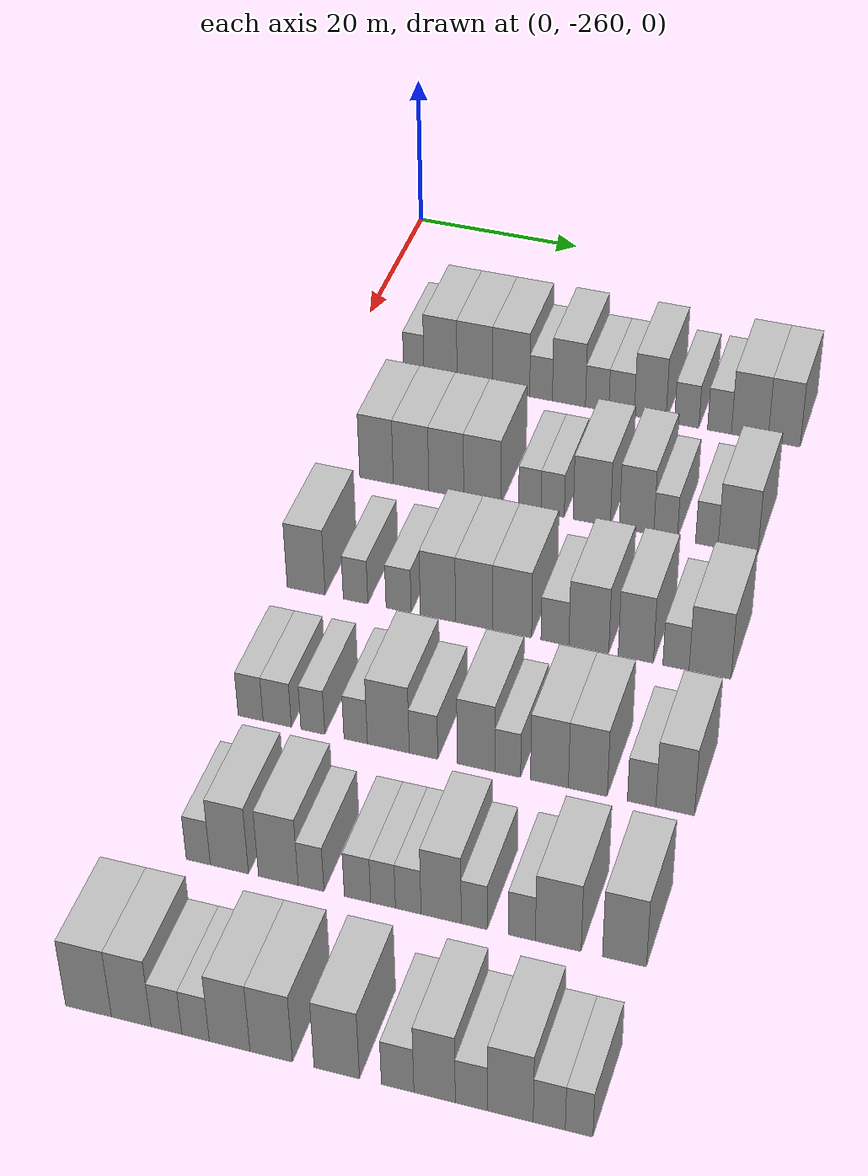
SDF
<sdf version="1.6">
 <world name="default">
  <model name="building_22">
   <static>1</static>
   <pose>25.0000 -251.3303 0 0.000000 0.000000 0.000000</pose>
   <link name="link">
    <pose>0 0 3.00 0 0 0</pose>
    <collision name="collision"><geometry><box><size>10.0000 2.4771 6.0000</size></box></geometry></collision>
    <visual name="visual">
     <cast_shadows>0</cast_shadows>
     <geometry><box><size>10.0000 2.4771 6.0000</size></box></geometry>
     <material>
      <script>
       <uri>model://HANNAS_wall/materials/scripts</uri>
       <uri>model://HANNAS_wall/materials/textures</uri>
       <name>vrc/HANNAS_wall</name>
      </script>
     </material>
    </visual>
   </link>
  </model>
  <model name="building_23">
   <static>1</static>
   <pose>25.0000 -248.0979 0 0.000000 0.000000 0.000000</pose>
   <link name="link">
    <pose>0 0 4.50 0 0 0</pose>
    <collision name="collision"><geometry><box><size>10.0000 3.9877 9.0000</size></box></geometry></collision>
    <visual name="visual">
     <cast_shadows>0</cast_shadows>
     <geometry><box><size>10.0000 3.9877 9.0000</size></box></geometry>
     <material>
      <script>
       <uri>model://HANNAS_wall/materials/scripts</uri>
       <uri>model://HANNAS_wall/materials/textures</uri>
       <name>vrc/HANNAS_wall</name>
      </script>
     </material>
    </visual>
   </link>
  </model>
  <model name="building_24">
   <static>1</static>
   <pose>25.0000 -243.9696 0 0.000000 0.000000 0.000000</pose>
   <link name="link">
    <pose>0 0 4.50 0 0 0</pose>
    <collision name="collision"><geometry><box><size>10.0000 4.2689 9.0000</size></box></geometry></collision>
    <visual name="visual">
     <cast_shadows>0</cast_shadows>
     <geometry><box><size>10.0000 4.2689 9.0000</size></box></geometry>
     <material>
      <script>
       <uri>model://HANNAS_wall/materials/scripts</uri>
       <uri>model://HANNAS_wall/materials/textures</uri>
       <name>vrc/HANNAS_wall</name>
      </script>
     </material>
    </visual>
   </link>
  </model>
  <model name="building_25">
   <static>1</static>
   <pose>25.0000 -239.6235 0 0.000000 0.000000 0.000000</pose>
   <link name="link">
    <pose>0 0 4.50 0 0 0</pose>
    <collision name="collision"><geometry><box><size>10.0000 4.4232 9.0000</size></box></geometry></collision>
    <visual name="visual">
     <cast_shadows>0</cast_shadows>
     <geometry><box><size>10.0000 4.4232 9.0000</size></box></geometry>
     <material>
      <script>
       <uri>model://HANNAS_wall/materials/scripts</uri>
       <uri>model://HANNAS_wall/materials/textures</uri>
       <name>vrc/HANNAS_wall</name>
      </script>
     </material>
    </visual>
   </link>
  </model>
  <model name="building_26">
   <static>1</static>
   <pose>25.0000 -236.0674 0 0.000000 0.000000 0.000000</pose>
   <link name="link">
    <pose>0 0 3.00 0 0 0</pose>
    <collision name="collision"><geometry><box><size>10.0000 2.6891 6.0000</size></box></geometry></collision>
    <visual name="visual">
     <cast_shadows>0</cast_shadows>
     <geometry><box><size>10.0000 2.6891 6.0000</size></box></geometry>
     <material>
      <script>
       <uri>model://HANNAS_wall/materials/scripts</uri>
       <uri>model://HANNAS_wall/materials/textures</uri>
       <name>vrc/HANNAS_wall</name>
      </script>
     </material>
    </visual>
   </link>
  </model>
  <model name="building_27">
   <static>1</static>
   <pose>25.0000 -232.7667 0 0.000000 0.000000 0.000000</pose>
   <link name="link">
    <pose>0 0 4.50 0 0 0</pose>
    <collision name="collision"><geometry><box><size>10.0000 3.9124 9.0000</size></box></geometry></collision>
    <visual name="visual">
     <cast_shadows>0</cast_shadows>
     <geometry><box><size>10.0000 3.9124 9.0000</size></box></geometry>
     <material>
      <script>
       <uri>model://HANNAS_wall/materials/scripts</uri>
       <uri>model://HANNAS_wall/materials/textures</uri>
       <name>vrc/HANNAS_wall</name>
      </script>
     </material>
    </visual>
   </link>
  </model>
  <model name="building_28">
   <static>1</static>
   <pose>25.0000 -229.4399 0 0.000000 0.000000 0.000000</pose>
   <link name="link">
    <pose>0 0 3.00 0 0 0</pose>
    <collision name="collision"><geometry><box><size>10.0000 2.7411 6.0000</size></box></geometry></collision>
    <visual name="visual">
     <cast_shadows>0</cast_shadows>
     <geometry><box><size>10.0000 2.7411 6.0000</size></box></geometry>
     <material>
      <script>
       <uri>model://HANNAS_wall/materials/scripts</uri>
       <uri>model://HANNAS_wall/materials/textures</uri>
       <name>vrc/HANNAS_wall</name>
      </script>
     </material>
    </visual>
   </link>
  </model>
  <model name="building_29">
   <static>1</static>
   <pose>25.0000 -226.5776 0 0.000000 0.000000 0.000000</pose>
   <link name="link">
    <pose>0 0 3.00 0 0 0</pose>
    <collision name="collision"><geometry><box><size>10.0000 2.9833 6.0000</size></box></geometry></collision>
    <visual name="visual">
     <cast_shadows>0</cast_shadows>
     <geometry><box><size>10.0000 2.9833 6.0000</size></box></geometry>
     <material>
      <script>
       <uri>model://HANNAS_wall/materials/scripts</uri>
       <uri>model://HANNAS_wall/materials/textures</uri>
       <name>vrc/HANNAS_wall</name>
      </script>
     </material>
    </visual>
   </link>
  </model>
  <model name="building_30">
   <static>1</static>
   <pose>25.0000 -223.2471 0 0.000000 0.000000 0.000000</pose>
   <link name="link">
    <pose>0 0 4.50 0 0 0</pose>
    <collision name="collision"><geometry><box><size>10.0000 3.6777 9.0000</size></box></geometry></collision>
    <visual name="visual">
     <cast_shadows>0</cast_shadows>
     <geometry><box><size>10.0000 3.6777 9.0000</size></box></geometry>
     <material>
      <script>
       <uri>model://HANNAS_wall/materials/scripts</uri>
       <uri>model://HANNAS_wall/materials/textures</uri>
       <name>vrc/HANNAS_wall</name>
      </script>
     </material>
    </visual>
   </link>
  </model>
  <model name="building_31">
   <static>1</static>
   <pose>25.0000 -218.9944 0 0.000000 0.000000 0.000000</pose>
   <link name="link">
    <pose>0 0 3.00 0 0 0</pose>
    <collision name="collision"><geometry><box><size>10.0000 2.8277 6.0000</size></box></geometry></collision>
    <visual name="visual">
     <cast_shadows>0</cast_shadows>
     <geometry><box><size>10.0000 2.8277 6.0000</size></box></geometry>
     <material>
      <script>
       <uri>model://HANNAS_wall/materials/scripts</uri>
       <uri>model://HANNAS_wall/materials/textures</uri>
       <name>vrc/HANNAS_wall</name>
      </script>
     </material>
    </visual>
   </link>
  </model>
  <model name="building_32">
   <static>1</static>
   <pose>25.0000 -215.2157 0 0.000000 0.000000 0.000000</pose>
   <link name="link">
    <pose>0 0 3.00 0 0 0</pose>
    <collision name="collision"><geometry><box><size>10.0000 2.7296 6.0000</size></box></geometry></collision>
    <visual name="visual">
     <cast_shadows>0</cast_shadows>
     <geometry><box><size>10.0000 2.7296 6.0000</size></box></geometry>
     <material>
      <script>
       <uri>model://HANNAS_wall/materials/scripts</uri>
       <uri>model://HANNAS_wall/materials/textures</uri>
       <name>vrc/HANNAS_wall</name>
      </script>
     </material>
    </visual>
   </link>
  </model>
  <model name="building_33">
   <static>1</static>
   <pose>25.0000 -211.7480 0 0.000000 0.000000 0.000000</pose>
   <link name="link">
    <pose>0 0 4.50 0 0 0</pose>
    <collision name="collision"><geometry><box><size>10.0000 4.2057 9.0000</size></box></geometry></collision>
    <visual name="visual">
     <cast_shadows>0</cast_shadows>
     <geometry><box><size>10.0000 4.2057 9.0000</size></box></geometry>
     <material>
      <script>
       <uri>model://HANNAS_wall/materials/scripts</uri>
       <uri>model://HANNAS_wall/materials/textures</uri>
       <name>vrc/HANNAS_wall</name>
      </script>
     </material>
    </visual>
   </link>
  </model>
  <model name="building_34">
   <static>1</static>
   <pose>25.0000 -207.8131 0 0.000000 0.000000 0.000000</pose>
   <link name="link">
    <pose>0 0 4.50 0 0 0</pose>
    <collision name="collision"><geometry><box><size>10.0000 3.6641 9.0000</size></box></geometry></collision>
    <visual name="visual">
     <cast_shadows>0</cast_shadows>
     <geometry><box><size>10.0000 3.6641 9.0000</size></box></geometry>
     <material>
      <script>
       <uri>model://HANNAS_wall/materials/scripts</uri>
       <uri>model://HANNAS_wall/materials/textures</uri>
       <name>vrc/HANNAS_wall</name>
      </script>
     </material>
    </visual>
   </link>
  </model>
  <model name="building_195">
   <static>1</static>
   <pose>44.0000 -249.5070 0 0.000000 0.000000 0.000000</pose>
   <link name="link">
    <pose>0 0 4.50 0 0 0</pose>
    <collision name="collision"><geometry><box><size>10.0000 3.8916 9.0000</size></box></geometry></collision>
    <visual name="visual">
     <cast_shadows>0</cast_shadows>
     <geometry><box><size>10.0000 3.8916 9.0000</size></box></geometry>
     <material>
      <script>
       <uri>model://HANNAS_wall/materials/scripts</uri>
       <uri>model://HANNAS_wall/materials/textures</uri>
       <name>vrc/HANNAS_wall</name>
      </script>
     </material>
    </visual>
   </link>
  </model>
  <model name="building_196">
   <static>1</static>
   <pose>44.0000 -245.5152 0 0.000000 0.000000 0.000000</pose>
   <link name="link">
    <pose>0 0 4.50 0 0 0</pose>
    <collision name="collision"><geometry><box><size>10.0000 4.0922 9.0000</size></box></geometry></collision>
    <visual name="visual">
     <cast_shadows>0</cast_shadows>
     <geometry><box><size>10.0000 4.0922 9.0000</size></box></geometry>
     <material>
      <script>
       <uri>model://HANNAS_wall/materials/scripts</uri>
       <uri>model://HANNAS_wall/materials/textures</uri>
       <name>vrc/HANNAS_wall</name>
      </script>
     </material>
    </visual>
   </link>
  </model>
  <model name="building_197">
   <static>1</static>
   <pose>44.0000 -241.4738 0 0.000000 0.000000 0.000000</pose>
   <link name="link">
    <pose>0 0 4.50 0 0 0</pose>
    <collision name="collision"><geometry><box><size>10.0000 3.9905 9.0000</size></box></geometry></collision>
    <visual name="visual">
     <cast_shadows>0</cast_shadows>
     <geometry><box><size>10.0000 3.9905 9.0000</size></box></geometry>
     <material>
      <script>
       <uri>model://HANNAS_wall/materials/scripts</uri>
       <uri>model://HANNAS_wall/materials/textures</uri>
       <name>vrc/HANNAS_wall</name>
      </script>
     </material>
    </visual>
   </link>
  </model>
  <model name="building_198">
   <static>1</static>
   <pose>44.0000 -237.3508 0 0.000000 0.000000 0.000000</pose>
   <link name="link">
    <pose>0 0 4.50 0 0 0</pose>
    <collision name="collision"><geometry><box><size>10.0000 4.2556 9.0000</size></box></geometry></collision>
    <visual name="visual">
     <cast_shadows>0</cast_shadows>
     <geometry><box><size>10.0000 4.2556 9.0000</size></box></geometry>
     <material>
      <script>
       <uri>model://HANNAS_wall/materials/scripts</uri>
       <uri>model://HANNAS_wall/materials/textures</uri>
       <name>vrc/HANNAS_wall</name>
      </script>
     </material>
    </visual>
   </link>
  </model>
  <model name="building_199">
   <static>1</static>
   <pose>44.0000 -231.9634 0 0.000000 0.000000 0.000000</pose>
   <link name="link">
    <pose>0 0 3.00 0 0 0</pose>
    <collision name="collision"><geometry><box><size>10.0000 2.5194 6.0000</size></box></geometry></collision>
    <visual name="visual">
     <cast_shadows>0</cast_shadows>
     <geometry><box><size>10.0000 2.5194 6.0000</size></box></geometry>
     <material>
      <script>
       <uri>model://HANNAS_wall/materials/scripts</uri>
       <uri>model://HANNAS_wall/materials/textures</uri>
       <name>vrc/HANNAS_wall</name>
      </script>
     </material>
    </visual>
   </link>
  </model>
  <model name="building_200">
   <static>1</static>
   <pose>44.0000 -229.4005 0 0.000000 0.000000 0.000000</pose>
   <link name="link">
    <pose>0 0 3.00 0 0 0</pose>
    <collision name="collision"><geometry><box><size>10.0000 2.6064 6.0000</size></box></geometry></collision>
    <visual name="visual">
     <cast_shadows>0</cast_shadows>
     <geometry><box><size>10.0000 2.6064 6.0000</size></box></geometry>
     <material>
      <script>
       <uri>model://HANNAS_wall/materials/scripts</uri>
       <uri>model://HANNAS_wall/materials/textures</uri>
       <name>vrc/HANNAS_wall</name>
      </script>
     </material>
    </visual>
   </link>
  </model>
  <model name="building_201">
   <static>1</static>
   <pose>44.0000 -225.0268 0 0.000000 0.000000 0.000000</pose>
   <link name="link">
    <pose>0 0 4.50 0 0 0</pose>
    <collision name="collision"><geometry><box><size>10.0000 4.1409 9.0000</size></box></geometry></collision>
    <visual name="visual">
     <cast_shadows>0</cast_shadows>
     <geometry><box><size>10.0000 4.1409 9.0000</size></box></geometry>
     <material>
      <script>
       <uri>model://HANNAS_wall/materials/scripts</uri>
       <uri>model://HANNAS_wall/materials/textures</uri>
       <name>vrc/HANNAS_wall</name>
      </script>
     </material>
    </visual>
   </link>
  </model>
  <model name="building_202">
   <static>1</static>
   <pose>44.0000 -220.0450 0 0.000000 0.000000 0.000000</pose>
   <link name="link">
    <pose>0 0 4.50 0 0 0</pose>
    <collision name="collision"><geometry><box><size>10.0000 3.8227 9.0000</size></box></geometry></collision>
    <visual name="visual">
     <cast_shadows>0</cast_shadows>
     <geometry><box><size>10.0000 3.8227 9.0000</size></box></geometry>
     <material>
      <script>
       <uri>model://HANNAS_wall/materials/scripts</uri>
       <uri>model://HANNAS_wall/materials/textures</uri>
       <name>vrc/HANNAS_wall</name>
      </script>
     </material>
    </visual>
   </link>
  </model>
  <model name="building_203">
   <static>1</static>
   <pose>44.0000 -216.8340 0 0.000000 0.000000 0.000000</pose>
   <link name="link">
    <pose>0 0 3.00 0 0 0</pose>
    <collision name="collision"><geometry><box><size>10.0000 2.5993 6.0000</size></box></geometry></collision>
    <visual name="visual">
     <cast_shadows>0</cast_shadows>
     <geometry><box><size>10.0000 2.5993 6.0000</size></box></geometry>
     <material>
      <script>
       <uri>model://HANNAS_wall/materials/scripts</uri>
       <uri>model://HANNAS_wall/materials/textures</uri>
       <name>vrc/HANNAS_wall</name>
      </script>
     </material>
    </visual>
   </link>
  </model>
  <model name="building_204">
   <static>1</static>
   <pose>44.0000 -212.3024 0 0.000000 0.000000 0.000000</pose>
   <link name="link">
    <pose>0 0 3.00 0 0 0</pose>
    <collision name="collision"><geometry><box><size>10.0000 2.4640 6.0000</size></box></geometry></collision>
    <visual name="visual">
     <cast_shadows>0</cast_shadows>
     <geometry><box><size>10.0000 2.4640 6.0000</size></box></geometry>
     <material>
      <script>
       <uri>model://HANNAS_wall/materials/scripts</uri>
       <uri>model://HANNAS_wall/materials/textures</uri>
       <name>vrc/HANNAS_wall</name>
      </script>
     </material>
    </visual>
   </link>
  </model>
  <model name="building_205">
   <static>1</static>
   <pose>44.0000 -208.9089 0 0.000000 0.000000 0.000000</pose>
   <link name="link">
    <pose>0 0 4.50 0 0 0</pose>
    <collision name="collision"><geometry><box><size>10.0000 4.3229 9.0000</size></box></geometry></collision>
    <visual name="visual">
     <cast_shadows>0</cast_shadows>
     <geometry><box><size>10.0000 4.3229 9.0000</size></box></geometry>
     <material>
      <script>
       <uri>model://HANNAS_wall/materials/scripts</uri>
       <uri>model://HANNAS_wall/materials/textures</uri>
       <name>vrc/HANNAS_wall</name>
      </script>
     </material>
    </visual>
   </link>
  </model>
  <model name="building_371">
   <static>1</static>
   <pose>63.0000 -250.9169 0 0.000000 0.000000 0.000000</pose>
   <link name="link">
    <pose>0 0 4.50 0 0 0</pose>
    <collision name="collision"><geometry><box><size>10.0000 4.2186 9.0000</size></box></geometry></collision>
    <visual name="visual">
     <cast_shadows>0</cast_shadows>
     <geometry><box><size>10.0000 4.2186 9.0000</size></box></geometry>
     <material>
      <script>
       <uri>model://HANNAS_wall/materials/scripts</uri>
       <uri>model://HANNAS_wall/materials/textures</uri>
       <name>vrc/HANNAS_wall</name>
      </script>
     </material>
    </visual>
   </link>
  </model>
  <model name="building_372">
   <static>1</static>
   <pose>63.0000 -245.4545 0 0.000000 0.000000 0.000000</pose>
   <link name="link">
    <pose>0 0 3.00 0 0 0</pose>
    <collision name="collision"><geometry><box><size>10.0000 2.7062 6.0000</size></box></geometry></collision>
    <visual name="visual">
     <cast_shadows>0</cast_shadows>
     <geometry><box><size>10.0000 2.7062 6.0000</size></box></geometry>
     <material>
      <script>
       <uri>model://HANNAS_wall/materials/scripts</uri>
       <uri>model://HANNAS_wall/materials/textures</uri>
       <name>vrc/HANNAS_wall</name>
      </script>
     </material>
    </visual>
   </link>
  </model>
  <model name="building_373">
   <static>1</static>
   <pose>63.0000 -240.7248 0 0.000000 0.000000 0.000000</pose>
   <link name="link">
    <pose>0 0 3.00 0 0 0</pose>
    <collision name="collision"><geometry><box><size>10.0000 2.7531 6.0000</size></box></geometry></collision>
    <visual name="visual">
     <cast_shadows>0</cast_shadows>
     <geometry><box><size>10.0000 2.7531 6.0000</size></box></geometry>
     <material>
      <script>
       <uri>model://HANNAS_wall/materials/scripts</uri>
       <uri>model://HANNAS_wall/materials/textures</uri>
       <name>vrc/HANNAS_wall</name>
      </script>
     </material>
    </visual>
   </link>
  </model>
  <model name="building_374">
   <static>1</static>
   <pose>63.0000 -236.4404 0 0.000000 0.000000 0.000000</pose>
   <link name="link">
    <pose>0 0 4.50 0 0 0</pose>
    <collision name="collision"><geometry><box><size>10.0000 3.8157 9.0000</size></box></geometry></collision>
    <visual name="visual">
     <cast_shadows>0</cast_shadows>
     <geometry><box><size>10.0000 3.8157 9.0000</size></box></geometry>
     <material>
      <script>
       <uri>model://HANNAS_wall/materials/scripts</uri>
       <uri>model://HANNAS_wall/materials/textures</uri>
       <name>vrc/HANNAS_wall</name>
      </script>
     </material>
    </visual>
   </link>
  </model>
  <model name="building_375">
   <static>1</static>
   <pose>63.0000 -232.5422 0 0.000000 0.000000 0.000000</pose>
   <link name="link">
    <pose>0 0 4.50 0 0 0</pose>
    <collision name="collision"><geometry><box><size>10.0000 3.9806 9.0000</size></box></geometry></collision>
    <visual name="visual">
     <cast_shadows>0</cast_shadows>
     <geometry><box><size>10.0000 3.9806 9.0000</size></box></geometry>
     <material>
      <script>
       <uri>model://HANNAS_wall/materials/scripts</uri>
       <uri>model://HANNAS_wall/materials/textures</uri>
       <name>vrc/HANNAS_wall</name>
      </script>
     </material>
    </visual>
   </link>
  </model>
  <model name="building_376">
   <static>1</static>
   <pose>63.0000 -228.4549 0 0.000000 0.000000 0.000000</pose>
   <link name="link">
    <pose>0 0 4.50 0 0 0</pose>
    <collision name="collision"><geometry><box><size>10.0000 4.1939 9.0000</size></box></geometry></collision>
    <visual name="visual">
     <cast_shadows>0</cast_shadows>
     <geometry><box><size>10.0000 4.1939 9.0000</size></box></geometry>
     <material>
      <script>
       <uri>model://HANNAS_wall/materials/scripts</uri>
       <uri>model://HANNAS_wall/materials/textures</uri>
       <name>vrc/HANNAS_wall</name>
      </script>
     </material>
    </visual>
   </link>
  </model>
  <model name="building_377">
   <static>1</static>
   <pose>63.0000 -223.8745 0 0.000000 0.000000 0.000000</pose>
   <link name="link">
    <pose>0 0 3.00 0 0 0</pose>
    <collision name="collision"><geometry><box><size>10.0000 2.9669 6.0000</size></box></geometry></collision>
    <visual name="visual">
     <cast_shadows>0</cast_shadows>
     <geometry><box><size>10.0000 2.9669 6.0000</size></box></geometry>
     <material>
      <script>
       <uri>model://HANNAS_wall/materials/scripts</uri>
       <uri>model://HANNAS_wall/materials/textures</uri>
       <name>vrc/HANNAS_wall</name>
      </script>
     </material>
    </visual>
   </link>
  </model>
  <model name="building_378">
   <static>1</static>
   <pose>63.0000 -220.2823 0 0.000000 0.000000 0.000000</pose>
   <link name="link">
    <pose>0 0 4.50 0 0 0</pose>
    <collision name="collision"><geometry><box><size>10.0000 4.2175 9.0000</size></box></geometry></collision>
    <visual name="visual">
     <cast_shadows>0</cast_shadows>
     <geometry><box><size>10.0000 4.2175 9.0000</size></box></geometry>
     <material>
      <script>
       <uri>model://HANNAS_wall/materials/scripts</uri>
       <uri>model://HANNAS_wall/materials/textures</uri>
       <name>vrc/HANNAS_wall</name>
      </script>
     </material>
    </visual>
   </link>
  </model>
  <model name="building_379">
   <static>1</static>
   <pose>63.0000 -215.3327 0 0.000000 0.000000 0.000000</pose>
   <link name="link">
    <pose>0 0 4.50 0 0 0</pose>
    <collision name="collision"><geometry><box><size>10.0000 3.6818 9.0000</size></box></geometry></collision>
    <visual name="visual">
     <cast_shadows>0</cast_shadows>
     <geometry><box><size>10.0000 3.6818 9.0000</size></box></geometry>
     <material>
      <script>
       <uri>model://HANNAS_wall/materials/scripts</uri>
       <uri>model://HANNAS_wall/materials/textures</uri>
       <name>vrc/HANNAS_wall</name>
      </script>
     </material>
    </visual>
   </link>
  </model>
  <model name="building_380">
   <static>1</static>
   <pose>63.0000 -211.1268 0 0.000000 0.000000 0.000000</pose>
   <link name="link">
    <pose>0 0 3.00 0 0 0</pose>
    <collision name="collision"><geometry><box><size>10.0000 2.7299 6.0000</size></box></geometry></collision>
    <visual name="visual">
     <cast_shadows>0</cast_shadows>
     <geometry><box><size>10.0000 2.7299 6.0000</size></box></geometry>
     <material>
      <script>
       <uri>model://HANNAS_wall/materials/scripts</uri>
       <uri>model://HANNAS_wall/materials/textures</uri>
       <name>vrc/HANNAS_wall</name>
      </script>
     </material>
    </visual>
   </link>
  </model>
  <model name="building_381">
   <static>1</static>
   <pose>63.0000 -207.5878 0 0.000000 0.000000 0.000000</pose>
   <link name="link">
    <pose>0 0 4.50 0 0 0</pose>
    <collision name="collision"><geometry><box><size>10.0000 4.3481 9.0000</size></box></geometry></collision>
    <visual name="visual">
     <cast_shadows>0</cast_shadows>
     <geometry><box><size>10.0000 4.3481 9.0000</size></box></geometry>
     <material>
      <script>
       <uri>model://HANNAS_wall/materials/scripts</uri>
       <uri>model://HANNAS_wall/materials/textures</uri>
       <name>vrc/HANNAS_wall</name>
      </script>
     </material>
    </visual>
   </link>
  </model>
  <model name="building_546">
   <static>1</static>
   <pose>82.0000 -249.9786 0 0.000000 0.000000 0.000000</pose>
   <link name="link">
    <pose>0 0 3.00 0 0 0</pose>
    <collision name="collision"><geometry><box><size>10.0000 2.6398 6.0000</size></box></geometry></collision>
    <visual name="visual">
     <cast_shadows>0</cast_shadows>
     <geometry><box><size>10.0000 2.6398 6.0000</size></box></geometry>
     <material>
      <script>
       <uri>model://HANNAS_wall/materials/scripts</uri>
       <uri>model://HANNAS_wall/materials/textures</uri>
       <name>vrc/HANNAS_wall</name>
      </script>
     </material>
    </visual>
   </link>
  </model>
  <model name="building_547">
   <static>1</static>
   <pose>82.0000 -247.1659 0 0.000000 0.000000 0.000000</pose>
   <link name="link">
    <pose>0 0 3.00 0 0 0</pose>
    <collision name="collision"><geometry><box><size>10.0000 2.9855 6.0000</size></box></geometry></collision>
    <visual name="visual">
     <cast_shadows>0</cast_shadows>
     <geometry><box><size>10.0000 2.9855 6.0000</size></box></geometry>
     <material>
      <script>
       <uri>model://HANNAS_wall/materials/scripts</uri>
       <uri>model://HANNAS_wall/materials/textures</uri>
       <name>vrc/HANNAS_wall</name>
      </script>
     </material>
    </visual>
   </link>
  </model>
  <model name="building_548">
   <static>1</static>
   <pose>82.0000 -243.4195 0 0.000000 0.000000 0.000000</pose>
   <link name="link">
    <pose>0 0 3.00 0 0 0</pose>
    <collision name="collision"><geometry><box><size>10.0000 2.5073 6.0000</size></box></geometry></collision>
    <visual name="visual">
     <cast_shadows>0</cast_shadows>
     <geometry><box><size>10.0000 2.5073 6.0000</size></box></geometry>
     <material>
      <script>
       <uri>model://HANNAS_wall/materials/scripts</uri>
       <uri>model://HANNAS_wall/materials/textures</uri>
       <name>vrc/HANNAS_wall</name>
      </script>
     </material>
    </visual>
   </link>
  </model>
  <model name="building_549">
   <static>1</static>
   <pose>82.0000 -238.9482 0 0.000000 0.000000 0.000000</pose>
   <link name="link">
    <pose>0 0 3.00 0 0 0</pose>
    <collision name="collision"><geometry><box><size>10.0000 2.4354 6.0000</size></box></geometry></collision>
    <visual name="visual">
     <cast_shadows>0</cast_shadows>
     <geometry><box><size>10.0000 2.4354 6.0000</size></box></geometry>
     <material>
      <script>
       <uri>model://HANNAS_wall/materials/scripts</uri>
       <uri>model://HANNAS_wall/materials/textures</uri>
       <name>vrc/HANNAS_wall</name>
      </script>
     </material>
    </visual>
   </link>
  </model>
  <model name="building_550">
   <static>1</static>
   <pose>82.0000 -235.5665 0 0.000000 0.000000 0.000000</pose>
   <link name="link">
    <pose>0 0 4.50 0 0 0</pose>
    <collision name="collision"><geometry><box><size>10.0000 4.3280 9.0000</size></box></geometry></collision>
    <visual name="visual">
     <cast_shadows>0</cast_shadows>
     <geometry><box><size>10.0000 4.3280 9.0000</size></box></geometry>
     <material>
      <script>
       <uri>model://HANNAS_wall/materials/scripts</uri>
       <uri>model://HANNAS_wall/materials/textures</uri>
       <name>vrc/HANNAS_wall</name>
      </script>
     </material>
    </visual>
   </link>
  </model>
  <model name="building_551">
   <static>1</static>
   <pose>82.0000 -231.9413 0 0.000000 0.000000 0.000000</pose>
   <link name="link">
    <pose>0 0 3.00 0 0 0</pose>
    <collision name="collision"><geometry><box><size>10.0000 2.9223 6.0000</size></box></geometry></collision>
    <visual name="visual">
     <cast_shadows>0</cast_shadows>
     <geometry><box><size>10.0000 2.9223 6.0000</size></box></geometry>
     <material>
      <script>
       <uri>model://HANNAS_wall/materials/scripts</uri>
       <uri>model://HANNAS_wall/materials/textures</uri>
       <name>vrc/HANNAS_wall</name>
      </script>
     </material>
    </visual>
   </link>
  </model>
  <model name="building_552">
   <static>1</static>
   <pose>82.0000 -226.5551 0 0.000000 0.000000 0.000000</pose>
   <link name="link">
    <pose>0 0 4.50 0 0 0</pose>
    <collision name="collision"><geometry><box><size>10.0000 3.8500 9.0000</size></box></geometry></collision>
    <visual name="visual">
     <cast_shadows>0</cast_shadows>
     <geometry><box><size>10.0000 3.8500 9.0000</size></box></geometry>
     <material>
      <script>
       <uri>model://HANNAS_wall/materials/scripts</uri>
       <uri>model://HANNAS_wall/materials/textures</uri>
       <name>vrc/HANNAS_wall</name>
      </script>
     </material>
    </visual>
   </link>
  </model>
  <model name="building_553">
   <static>1</static>
   <pose>82.0000 -223.3403 0 0.000000 0.000000 0.000000</pose>
   <link name="link">
    <pose>0 0 3.00 0 0 0</pose>
    <collision name="collision"><geometry><box><size>10.0000 2.5797 6.0000</size></box></geometry></collision>
    <visual name="visual">
     <cast_shadows>0</cast_shadows>
     <geometry><box><size>10.0000 2.5797 6.0000</size></box></geometry>
     <material>
      <script>
       <uri>model://HANNAS_wall/materials/scripts</uri>
       <uri>model://HANNAS_wall/materials/textures</uri>
       <name>vrc/HANNAS_wall</name>
      </script>
     </material>
    </visual>
   </link>
  </model>
  <model name="building_554">
   <static>1</static>
   <pose>82.0000 -219.1497 0 0.000000 0.000000 0.000000</pose>
   <link name="link">
    <pose>0 0 4.50 0 0 0</pose>
    <collision name="collision"><geometry><box><size>10.0000 3.8014 9.0000</size></box></geometry></collision>
    <visual name="visual">
     <cast_shadows>0</cast_shadows>
     <geometry><box><size>10.0000 3.8014 9.0000</size></box></geometry>
     <material>
      <script>
       <uri>model://HANNAS_wall/materials/scripts</uri>
       <uri>model://HANNAS_wall/materials/textures</uri>
       <name>vrc/HANNAS_wall</name>
      </script>
     </material>
    </visual>
   </link>
  </model>
  <model name="building_555">
   <static>1</static>
   <pose>82.0000 -215.3072 0 0.000000 0.000000 0.000000</pose>
   <link name="link">
    <pose>0 0 4.50 0 0 0</pose>
    <collision name="collision"><geometry><box><size>10.0000 3.8837 9.0000</size></box></geometry></collision>
    <visual name="visual">
     <cast_shadows>0</cast_shadows>
     <geometry><box><size>10.0000 3.8837 9.0000</size></box></geometry>
     <material>
      <script>
       <uri>model://HANNAS_wall/materials/scripts</uri>
       <uri>model://HANNAS_wall/materials/textures</uri>
       <name>vrc/HANNAS_wall</name>
      </script>
     </material>
    </visual>
   </link>
  </model>
  <model name="building_556">
   <static>1</static>
   <pose>82.0000 -209.9567 0 0.000000 0.000000 0.000000</pose>
   <link name="link">
    <pose>0 0 3.00 0 0 0</pose>
    <collision name="collision"><geometry><box><size>10.0000 2.8173 6.0000</size></box></geometry></collision>
    <visual name="visual">
     <cast_shadows>0</cast_shadows>
     <geometry><box><size>10.0000 2.8173 6.0000</size></box></geometry>
     <material>
      <script>
       <uri>model://HANNAS_wall/materials/scripts</uri>
       <uri>model://HANNAS_wall/materials/textures</uri>
       <name>vrc/HANNAS_wall</name>
      </script>
     </material>
    </visual>
   </link>
  </model>
  <model name="building_557">
   <static>1</static>
   <pose>82.0000 -206.6530 0 0.000000 0.000000 0.000000</pose>
   <link name="link">
    <pose>0 0 4.50 0 0 0</pose>
    <collision name="collision"><geometry><box><size>10.0000 3.7901 9.0000</size></box></geometry></collision>
    <visual name="visual">
     <cast_shadows>0</cast_shadows>
     <geometry><box><size>10.0000 3.7901 9.0000</size></box></geometry>
     <material>
      <script>
       <uri>model://HANNAS_wall/materials/scripts</uri>
       <uri>model://HANNAS_wall/materials/textures</uri>
       <name>vrc/HANNAS_wall</name>
      </script>
     </material>
    </visual>
   </link>
  </model>
  <model name="building_698">
   <static>1</static>
   <pose>101.0000 -248.0613 0 0.000000 0.000000 0.000000</pose>
   <link name="link">
    <pose>0 0 3.00 0 0 0</pose>
    <collision name="collision"><geometry><box><size>10.0000 2.4144 6.0000</size></box></geometry></collision>
    <visual name="visual">
     <cast_shadows>0</cast_shadows>
     <geometry><box><size>10.0000 2.4144 6.0000</size></box></geometry>
     <material>
      <script>
       <uri>model://HANNAS_wall/materials/scripts</uri>
       <uri>model://HANNAS_wall/materials/textures</uri>
       <name>vrc/HANNAS_wall</name>
      </script>
     </material>
    </visual>
   </link>
  </model>
  <model name="building_699">
   <static>1</static>
   <pose>101.0000 -244.9475 0 0.000000 0.000000 0.000000</pose>
   <link name="link">
    <pose>0 0 4.50 0 0 0</pose>
    <collision name="collision"><geometry><box><size>10.0000 3.8131 9.0000</size></box></geometry></collision>
    <visual name="visual">
     <cast_shadows>0</cast_shadows>
     <geometry><box><size>10.0000 3.8131 9.0000</size></box></geometry>
     <material>
      <script>
       <uri>model://HANNAS_wall/materials/scripts</uri>
       <uri>model://HANNAS_wall/materials/textures</uri>
       <name>vrc/HANNAS_wall</name>
      </script>
     </material>
    </visual>
   </link>
  </model>
  <model name="building_700">
   <static>1</static>
   <pose>101.0000 -240.0746 0 0.000000 0.000000 0.000000</pose>
   <link name="link">
    <pose>0 0 4.50 0 0 0</pose>
    <collision name="collision"><geometry><box><size>10.0000 3.9328 9.0000</size></box></geometry></collision>
    <visual name="visual">
     <cast_shadows>0</cast_shadows>
     <geometry><box><size>10.0000 3.9328 9.0000</size></box></geometry>
     <material>
      <script>
       <uri>model://HANNAS_wall/materials/scripts</uri>
       <uri>model://HANNAS_wall/materials/textures</uri>
       <name>vrc/HANNAS_wall</name>
      </script>
     </material>
    </visual>
   </link>
  </model>
  <model name="building_701">
   <static>1</static>
   <pose>101.0000 -236.8377 0 0.000000 0.000000 0.000000</pose>
   <link name="link">
    <pose>0 0 3.00 0 0 0</pose>
    <collision name="collision"><geometry><box><size>10.0000 2.5408 6.0000</size></box></geometry></collision>
    <visual name="visual">
     <cast_shadows>0</cast_shadows>
     <geometry><box><size>10.0000 2.5408 6.0000</size></box></geometry>
     <material>
      <script>
       <uri>model://HANNAS_wall/materials/scripts</uri>
       <uri>model://HANNAS_wall/materials/textures</uri>
       <name>vrc/HANNAS_wall</name>
      </script>
     </material>
    </visual>
   </link>
  </model>
  <model name="building_702">
   <static>1</static>
   <pose>101.0000 -232.2800 0 0.000000 0.000000 0.000000</pose>
   <link name="link">
    <pose>0 0 3.00 0 0 0</pose>
    <collision name="collision"><geometry><box><size>10.0000 2.5747 6.0000</size></box></geometry></collision>
    <visual name="visual">
     <cast_shadows>0</cast_shadows>
     <geometry><box><size>10.0000 2.5747 6.0000</size></box></geometry>
     <material>
      <script>
       <uri>model://HANNAS_wall/materials/scripts</uri>
       <uri>model://HANNAS_wall/materials/textures</uri>
       <name>vrc/HANNAS_wall</name>
      </script>
     </material>
    </visual>
   </link>
  </model>
  <model name="building_703">
   <static>1</static>
   <pose>101.0000 -229.7887 0 0.000000 0.000000 0.000000</pose>
   <link name="link">
    <pose>0 0 3.00 0 0 0</pose>
    <collision name="collision"><geometry><box><size>10.0000 2.4077 6.0000</size></box></geometry></collision>
    <visual name="visual">
     <cast_shadows>0</cast_shadows>
     <geometry><box><size>10.0000 2.4077 6.0000</size></box></geometry>
     <material>
      <script>
       <uri>model://HANNAS_wall/materials/scripts</uri>
       <uri>model://HANNAS_wall/materials/textures</uri>
       <name>vrc/HANNAS_wall</name>
      </script>
     </material>
    </visual>
   </link>
  </model>
  <model name="building_704">
   <static>1</static>
   <pose>101.0000 -227.3436 0 0.000000 0.000000 0.000000</pose>
   <link name="link">
    <pose>0 0 3.00 0 0 0</pose>
    <collision name="collision"><geometry><box><size>10.0000 2.4825 6.0000</size></box></geometry></collision>
    <visual name="visual">
     <cast_shadows>0</cast_shadows>
     <geometry><box><size>10.0000 2.4825 6.0000</size></box></geometry>
     <material>
      <script>
       <uri>model://HANNAS_wall/materials/scripts</uri>
       <uri>model://HANNAS_wall/materials/textures</uri>
       <name>vrc/HANNAS_wall</name>
      </script>
     </material>
    </visual>
   </link>
  </model>
  <model name="building_705">
   <static>1</static>
   <pose>101.0000 -224.1701 0 0.000000 0.000000 0.000000</pose>
   <link name="link">
    <pose>0 0 4.50 0 0 0</pose>
    <collision name="collision"><geometry><box><size>10.0000 3.8644 9.0000</size></box></geometry></collision>
    <visual name="visual">
     <cast_shadows>0</cast_shadows>
     <geometry><box><size>10.0000 3.8644 9.0000</size></box></geometry>
     <material>
      <script>
       <uri>model://HANNAS_wall/materials/scripts</uri>
       <uri>model://HANNAS_wall/materials/textures</uri>
       <name>vrc/HANNAS_wall</name>
      </script>
     </material>
    </visual>
   </link>
  </model>
  <model name="building_706">
   <static>1</static>
   <pose>101.0000 -220.9921 0 0.000000 0.000000 0.000000</pose>
   <link name="link">
    <pose>0 0 3.00 0 0 0</pose>
    <collision name="collision"><geometry><box><size>10.0000 2.4917 6.0000</size></box></geometry></collision>
    <visual name="visual">
     <cast_shadows>0</cast_shadows>
     <geometry><box><size>10.0000 2.4917 6.0000</size></box></geometry>
     <material>
      <script>
       <uri>model://HANNAS_wall/materials/scripts</uri>
       <uri>model://HANNAS_wall/materials/textures</uri>
       <name>vrc/HANNAS_wall</name>
      </script>
     </material>
    </visual>
   </link>
  </model>
  <model name="building_707">
   <static>1</static>
   <pose>101.0000 -216.4590 0 0.000000 0.000000 0.000000</pose>
   <link name="link">
    <pose>0 0 3.00 0 0 0</pose>
    <collision name="collision"><geometry><box><size>10.0000 2.5745 6.0000</size></box></geometry></collision>
    <visual name="visual">
     <cast_shadows>0</cast_shadows>
     <geometry><box><size>10.0000 2.5745 6.0000</size></box></geometry>
     <material>
      <script>
       <uri>model://HANNAS_wall/materials/scripts</uri>
       <uri>model://HANNAS_wall/materials/textures</uri>
       <name>vrc/HANNAS_wall</name>
      </script>
     </material>
    </visual>
   </link>
  </model>
  <model name="building_708">
   <static>1</static>
   <pose>101.0000 -213.0097 0 0.000000 0.000000 0.000000</pose>
   <link name="link">
    <pose>0 0 4.50 0 0 0</pose>
    <collision name="collision"><geometry><box><size>10.0000 4.3241 9.0000</size></box></geometry></collision>
    <visual name="visual">
     <cast_shadows>0</cast_shadows>
     <geometry><box><size>10.0000 4.3241 9.0000</size></box></geometry>
     <material>
      <script>
       <uri>model://HANNAS_wall/materials/scripts</uri>
       <uri>model://HANNAS_wall/materials/textures</uri>
       <name>vrc/HANNAS_wall</name>
      </script>
     </material>
    </visual>
   </link>
  </model>
  <model name="building_709">
   <static>1</static>
   <pose>101.0000 -206.7958 0 0.000000 0.000000 0.000000</pose>
   <link name="link">
    <pose>0 0 4.50 0 0 0</pose>
    <collision name="collision"><geometry><box><size>10.0000 4.1039 9.0000</size></box></geometry></collision>
    <visual name="visual">
     <cast_shadows>0</cast_shadows>
     <geometry><box><size>10.0000 4.1039 9.0000</size></box></geometry>
     <material>
      <script>
       <uri>model://HANNAS_wall/materials/scripts</uri>
       <uri>model://HANNAS_wall/materials/textures</uri>
       <name>vrc/HANNAS_wall</name>
      </script>
     </material>
    </visual>
   </link>
  </model>
  <model name="building_865">
   <static>1</static>
   <pose>120.0000 -251.0196 0 0.000000 0.000000 0.000000</pose>
   <link name="link">
    <pose>0 0 4.50 0 0 0</pose>
    <collision name="collision"><geometry><box><size>10.0000 4.4007 9.0000</size></box></geometry></collision>
    <visual name="visual">
     <cast_shadows>0</cast_shadows>
     <geometry><box><size>10.0000 4.4007 9.0000</size></box></geometry>
     <material>
      <script>
       <uri>model://HANNAS_wall/materials/scripts</uri>
       <uri>model://HANNAS_wall/materials/textures</uri>
       <name>vrc/HANNAS_wall</name>
      </script>
     </material>
    </visual>
   </link>
  </model>
  <model name="building_866">
   <static>1</static>
   <pose>120.0000 -246.9318 0 0.000000 0.000000 0.000000</pose>
   <link name="link">
    <pose>0 0 4.50 0 0 0</pose>
    <collision name="collision"><geometry><box><size>10.0000 3.7749 9.0000</size></box></geometry></collision>
    <visual name="visual">
     <cast_shadows>0</cast_shadows>
     <geometry><box><size>10.0000 3.7749 9.0000</size></box></geometry>
     <material>
      <script>
       <uri>model://HANNAS_wall/materials/scripts</uri>
       <uri>model://HANNAS_wall/materials/textures</uri>
       <name>vrc/HANNAS_wall</name>
      </script>
     </material>
    </visual>
   </link>
  </model>
  <model name="building_867">
   <static>1</static>
   <pose>120.0000 -243.5829 0 0.000000 0.000000 0.000000</pose>
   <link name="link">
    <pose>0 0 3.00 0 0 0</pose>
    <collision name="collision"><geometry><box><size>10.0000 2.9230 6.0000</size></box></geometry></collision>
    <visual name="visual">
     <cast_shadows>0</cast_shadows>
     <geometry><box><size>10.0000 2.9230 6.0000</size></box></geometry>
     <material>
      <script>
       <uri>model://HANNAS_wall/materials/scripts</uri>
       <uri>model://HANNAS_wall/materials/textures</uri>
       <name>vrc/HANNAS_wall</name>
      </script>
     </material>
    </visual>
   </link>
  </model>
  <model name="building_868">
   <static>1</static>
   <pose>120.0000 -240.8338 0 0.000000 0.000000 0.000000</pose>
   <link name="link">
    <pose>0 0 3.00 0 0 0</pose>
    <collision name="collision"><geometry><box><size>10.0000 2.5751 6.0000</size></box></geometry></collision>
    <visual name="visual">
     <cast_shadows>0</cast_shadows>
     <geometry><box><size>10.0000 2.5751 6.0000</size></box></geometry>
     <material>
      <script>
       <uri>model://HANNAS_wall/materials/scripts</uri>
       <uri>model://HANNAS_wall/materials/textures</uri>
       <name>vrc/HANNAS_wall</name>
      </script>
     </material>
    </visual>
   </link>
  </model>
  <model name="building_869">
   <static>1</static>
   <pose>120.0000 -237.6385 0 0.000000 0.000000 0.000000</pose>
   <link name="link">
    <pose>0 0 4.50 0 0 0</pose>
    <collision name="collision"><geometry><box><size>10.0000 3.8157 9.0000</size></box></geometry></collision>
    <visual name="visual">
     <cast_shadows>0</cast_shadows>
     <geometry><box><size>10.0000 3.8157 9.0000</size></box></geometry>
     <material>
      <script>
       <uri>model://HANNAS_wall/materials/scripts</uri>
       <uri>model://HANNAS_wall/materials/textures</uri>
       <name>vrc/HANNAS_wall</name>
      </script>
     </material>
    </visual>
   </link>
  </model>
  <model name="building_870">
   <static>1</static>
   <pose>120.0000 -233.7596 0 0.000000 0.000000 0.000000</pose>
   <link name="link">
    <pose>0 0 4.50 0 0 0</pose>
    <collision name="collision"><geometry><box><size>10.0000 3.9421 9.0000</size></box></geometry></collision>
    <visual name="visual">
     <cast_shadows>0</cast_shadows>
     <geometry><box><size>10.0000 3.9421 9.0000</size></box></geometry>
     <material>
      <script>
       <uri>model://HANNAS_wall/materials/scripts</uri>
       <uri>model://HANNAS_wall/materials/textures</uri>
       <name>vrc/HANNAS_wall</name>
      </script>
     </material>
    </visual>
   </link>
  </model>
  <model name="building_871">
   <static>1</static>
   <pose>120.0000 -227.7035 0 0.000000 0.000000 0.000000</pose>
   <link name="link">
    <pose>0 0 4.50 0 0 0</pose>
    <collision name="collision"><geometry><box><size>10.0000 4.1699 9.0000</size></box></geometry></collision>
    <visual name="visual">
     <cast_shadows>0</cast_shadows>
     <geometry><box><size>10.0000 4.1699 9.0000</size></box></geometry>
     <material>
      <script>
       <uri>model://HANNAS_wall/materials/scripts</uri>
       <uri>model://HANNAS_wall/materials/textures</uri>
       <name>vrc/HANNAS_wall</name>
      </script>
     </material>
    </visual>
   </link>
  </model>
  <model name="building_872">
   <static>1</static>
   <pose>120.0000 -222.1416 0 0.000000 0.000000 0.000000</pose>
   <link name="link">
    <pose>0 0 3.00 0 0 0</pose>
    <collision name="collision"><geometry><box><size>10.0000 2.9539 6.0000</size></box></geometry></collision>
    <visual name="visual">
     <cast_shadows>0</cast_shadows>
     <geometry><box><size>10.0000 2.9539 6.0000</size></box></geometry>
     <material>
      <script>
       <uri>model://HANNAS_wall/materials/scripts</uri>
       <uri>model://HANNAS_wall/materials/textures</uri>
       <name>vrc/HANNAS_wall</name>
      </script>
     </material>
    </visual>
   </link>
  </model>
  <model name="building_873">
   <static>1</static>
   <pose>120.0000 -218.7976 0 0.000000 0.000000 0.000000</pose>
   <link name="link">
    <pose>0 0 4.50 0 0 0</pose>
    <collision name="collision"><geometry><box><size>10.0000 3.7340 9.0000</size></box></geometry></collision>
    <visual name="visual">
     <cast_shadows>0</cast_shadows>
     <geometry><box><size>10.0000 3.7340 9.0000</size></box></geometry>
     <material>
      <script>
       <uri>model://HANNAS_wall/materials/scripts</uri>
       <uri>model://HANNAS_wall/materials/textures</uri>
       <name>vrc/HANNAS_wall</name>
      </script>
     </material>
    </visual>
   </link>
  </model>
  <model name="building_874">
   <static>1</static>
   <pose>120.0000 -215.4806 0 0.000000 0.000000 0.000000</pose>
   <link name="link">
    <pose>0 0 3.00 0 0 0</pose>
    <collision name="collision"><geometry><box><size>10.0000 2.9000 6.0000</size></box></geometry></collision>
    <visual name="visual">
     <cast_shadows>0</cast_shadows>
     <geometry><box><size>10.0000 2.9000 6.0000</size></box></geometry>
     <material>
      <script>
       <uri>model://HANNAS_wall/materials/scripts</uri>
       <uri>model://HANNAS_wall/materials/textures</uri>
       <name>vrc/HANNAS_wall</name>
      </script>
     </material>
    </visual>
   </link>
  </model>
  <model name="building_875">
   <static>1</static>
   <pose>120.0000 -212.0019 0 0.000000 0.000000 0.000000</pose>
   <link name="link">
    <pose>0 0 4.50 0 0 0</pose>
    <collision name="collision"><geometry><box><size>10.0000 4.0574 9.0000</size></box></geometry></collision>
    <visual name="visual">
     <cast_shadows>0</cast_shadows>
     <geometry><box><size>10.0000 4.0574 9.0000</size></box></geometry>
     <material>
      <script>
       <uri>model://HANNAS_wall/materials/scripts</uri>
       <uri>model://HANNAS_wall/materials/textures</uri>
       <name>vrc/HANNAS_wall</name>
      </script>
     </material>
    </visual>
   </link>
  </model>
  <model name="building_876">
   <static>1</static>
   <pose>120.0000 -208.5548 0 0.000000 0.000000 0.000000</pose>
   <link name="link">
    <pose>0 0 3.00 0 0 0</pose>
    <collision name="collision"><geometry><box><size>10.0000 2.8367 6.0000</size></box></geometry></collision>
    <visual name="visual">
     <cast_shadows>0</cast_shadows>
     <geometry><box><size>10.0000 2.8367 6.0000</size></box></geometry>
     <material>
      <script>
       <uri>model://HANNAS_wall/materials/scripts</uri>
       <uri>model://HANNAS_wall/materials/textures</uri>
       <name>vrc/HANNAS_wall</name>
      </script>
     </material>
    </visual>
   </link>
  </model>
  <model name="building_877">
   <static>1</static>
   <pose>120.0000 -205.9190 0 0.000000 0.000000 0.000000</pose>
   <link name="link">
    <pose>0 0 3.00 0 0 0</pose>
    <collision name="collision"><geometry><box><size>10.0000 2.4351 6.0000</size></box></geometry></collision>
    <visual name="visual">
     <cast_shadows>0</cast_shadows>
     <geometry><box><size>10.0000 2.4351 6.0000</size></box></geometry>
     <material>
      <script>
       <uri>model://HANNAS_wall/materials/scripts</uri>
       <uri>model://HANNAS_wall/materials/textures</uri>
       <name>vrc/HANNAS_wall</name>
      </script>
     </material>
    </visual>
   </link>
  </model>
 </world>
</sdf>
